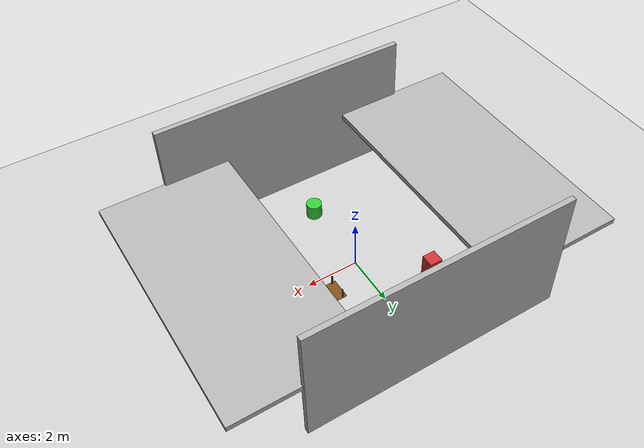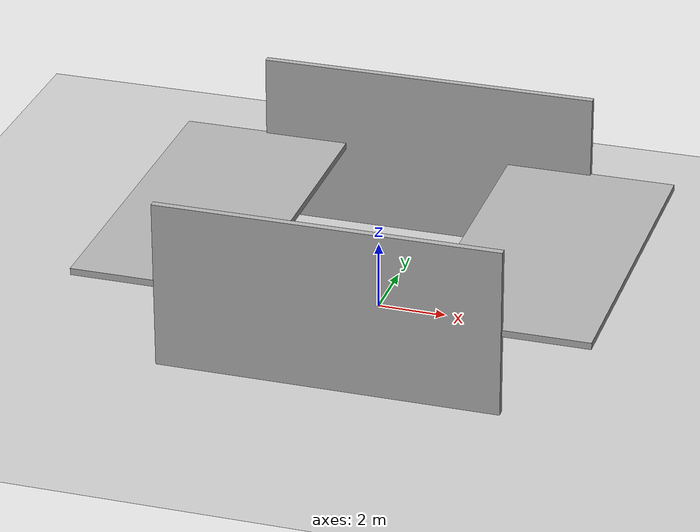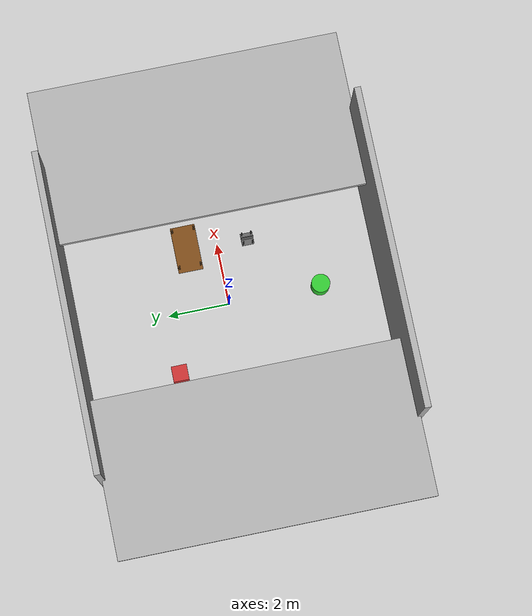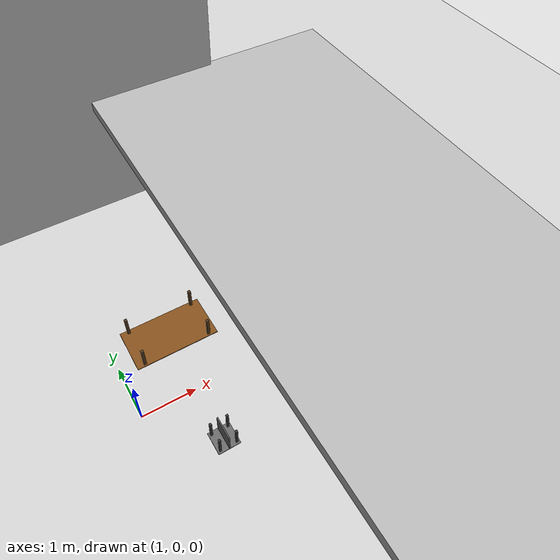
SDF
<sdf version="1.7">
 <world name="humanoid_indoor">
  <physics type="ode">
   <gravity>0 0 -9.8</gravity>
   <max_step_size>0.001</max_step_size>
   <real_time_factor>1.0</real_time_factor>
   <real_time_update_rate>1000</real_time_update_rate>
   <ode>
    <solver><type>quick</type><iters>100</iters><sor>1.3</sor></solver>
    <constraints>
     <cfm>0.0</cfm>
     <erp>0.2</erp>
     <contact_max_correcting_vel>100.0</contact_max_correcting_vel>
     <contact_surface_layer>0.001</contact_surface_layer>
    </constraints>
   </ode>
  </physics>
  <light name="sun" type="directional">
   <pose>0 0 10 0 0 0</pose>
   <diffuse>0.8 0.8 0.8 1</diffuse>
   <specular>0.2 0.2 0.2 1</specular>
   <attenuation>
    <range>1000</range>
    <constant>0.9</constant>
    <linear>0.01</linear>
    <quadratic>0.001</quadratic>
   </attenuation>
   <direction>-0.3 0.1 -0.9</direction>
  </light>
  <light name="ceiling_light_1" type="point">
   <pose>0 0 3 0 0 0</pose>
   <diffuse>0.8 0.8 0.8 1</diffuse>
   <specular>0.2 0.2 0.2 1</specular>
   <attenuation>
    <range>10</range>
    <constant>0.5</constant>
    <linear>0.05</linear>
    <quadratic>0.01</quadratic>
   </attenuation>
  </light>
  <light name="ceiling_light_2" type="point">
   <pose>3 0 3 0 0 0</pose>
   <diffuse>0.8 0.8 0.8 1</diffuse>
   <specular>0.2 0.2 0.2 1</specular>
   <attenuation>
    <range>10</range>
    <constant>0.5</constant>
    <linear>0.05</linear>
    <quadratic>0.01</quadratic>
   </attenuation>
  </light>
  <light name="ceiling_light_3" type="point">
   <pose>-3 0 3 0 0 0</pose>
   <diffuse>0.8 0.8 0.8 1</diffuse>
   <specular>0.2 0.2 0.2 1</specular>
   <attenuation>
    <range>10</range>
    <constant>0.5</constant>
    <linear>0.05</linear>
    <quadratic>0.01</quadratic>
   </attenuation>
  </light>
  <include><uri>model://ground_plane</uri></include>
  <model name="wall_front">
   <pose>0 -5 2.5 0 0 0</pose>
   <link name="link">
    <collision name="collision"><geometry><box><size>10 0.2 5</size></box></geometry></collision>
    <visual name="visual">
     <geometry><box><size>10 0.2 5</size></box></geometry>
     <material><ambient>0.7 0.7 0.7 1</ambient><diffuse>0.7 0.7 0.7 1</diffuse></material>
    </visual>
   </link>
  </model>
  <model name="wall_back">
   <pose>0 5 2.5 0 0 3.14159</pose>
   <link name="link">
    <collision name="collision"><geometry><box><size>10 0.2 5</size></box></geometry></collision>
    <visual name="visual">
     <geometry><box><size>10 0.2 5</size></box></geometry>
     <material><ambient>0.7 0.7 0.7 1</ambient><diffuse>0.7 0.7 0.7 1</diffuse></material>
    </visual>
   </link>
  </model>
  <model name="wall_left">
   <pose>-5 0 2.5 -1.5708 0 -1.5708</pose>
   <link name="link">
    <collision name="collision"><geometry><box><size>10 0.2 5</size></box></geometry></collision>
    <visual name="visual">
     <geometry><box><size>10 0.2 5</size></box></geometry>
     <material><ambient>0.7 0.7 0.7 1</ambient><diffuse>0.7 0.7 0.7 1</diffuse></material>
    </visual>
   </link>
  </model>
  <model name="wall_right">
   <pose>5 0 2.5 -1.5708 0 1.5708</pose>
   <link name="link">
    <collision name="collision"><geometry><box><size>10 0.2 5</size></box></geometry></collision>
    <visual name="visual">
     <geometry><box><size>10 0.2 5</size></box></geometry>
     <material><ambient>0.7 0.7 0.7 1</ambient><diffuse>0.7 0.7 0.7 1</diffuse></material>
    </visual>
   </link>
  </model>
  <model name="table">
   <pose>2 1 0.4 0 0 0</pose>
   <link name="table_top">
    <collision name="collision"><geometry><box><size>1.5 0.8 0.02</size></box></geometry></collision>
    <visual name="visual">
     <geometry><box><size>1.5 0.8 0.02</size></box></geometry>
     <material><ambient>0.5 0.3 0.1 1</ambient><diffuse>0.5 0.3 0.1 1</diffuse></material>
    </visual>
    <inertial><mass>10.0</mass><inertia ixx="1.0" ixy="0.0" ixz="0.0" iyy="1.0" iyz="0.0" izz="1.0"/></inertial>
   </link>
   <link name="leg_1">
    <pose>-0.6 -0.35 0.2 0 0 0</pose>
    <collision name="collision"><geometry><box><size>0.05 0.05 0.4</size></box></geometry></collision>
    <visual name="visual">
     <geometry><box><size>0.05 0.05 0.4</size></box></geometry>
     <material><ambient>0.3 0.2 0.1 1</ambient><diffuse>0.3 0.2 0.1 1</diffuse></material>
    </visual>
    <inertial><mass>1.0</mass><inertia ixx="0.1" ixy="0.0" ixz="0.0" iyy="0.1" iyz="0.0" izz="0.1"/></inertial>
   </link>
   <link name="leg_2">
    <pose>0.6 -0.35 0.2 0 0 0</pose>
    <collision name="collision"><geometry><box><size>0.05 0.05 0.4</size></box></geometry></collision>
    <visual name="visual">
     <geometry><box><size>0.05 0.05 0.4</size></box></geometry>
     <material><ambient>0.3 0.2 0.1 1</ambient><diffuse>0.3 0.2 0.1 1</diffuse></material>
    </visual>
    <inertial><mass>1.0</mass><inertia ixx="0.1" ixy="0.0" ixz="0.0" iyy="0.1" iyz="0.0" izz="0.1"/></inertial>
   </link>
   <link name="leg_3">
    <pose>-0.6 0.35 0.2 0 0 0</pose>
    <collision name="collision"><geometry><box><size>0.05 0.05 0.4</size></box></geometry></collision>
    <visual name="visual">
     <geometry><box><size>0.05 0.05 0.4</size></box></geometry>
     <material><ambient>0.3 0.2 0.1 1</ambient><diffuse>0.3 0.2 0.1 1</diffuse></material>
    </visual>
    <inertial><mass>1.0</mass><inertia ixx="0.1" ixy="0.0" ixz="0.0" iyy="0.1" iyz="0.0" izz="0.1"/></inertial>
   </link>
   <link name="leg_4">
    <pose>0.6 0.35 0.2 0 0 0</pose>
    <collision name="collision"><geometry><box><size>0.05 0.05 0.4</size></box></geometry></collision>
    <visual name="visual">
     <geometry><box><size>0.05 0.05 0.4</size></box></geometry>
     <material><ambient>0.3 0.2 0.1 1</ambient><diffuse>0.3 0.2 0.1 1</diffuse></material>
    </visual>
    <inertial><mass>1.0</mass><inertia ixx="0.1" ixy="0.0" ixz="0.0" iyy="0.1" iyz="0.0" izz="0.1"/></inertial>
   </link>
   <joint name="top_to_leg_1" type="fixed"><parent>table_top</parent><child>leg_1</child></joint>
   <joint name="top_to_leg_2" type="fixed"><parent>table_top</parent><child>leg_2</child></joint>
   <joint name="top_to_leg_3" type="fixed"><parent>table_top</parent><child>leg_3</child></joint>
   <joint name="top_to_leg_4" type="fixed"><parent>table_top</parent><child>leg_4</child></joint>
  </model>
  <model name="chair">
   <pose>2 -1 0 0 0 0</pose>
   <link name="seat">
    <collision name="collision"><geometry><box><size>0.4 0.4 0.02</size></box></geometry></collision>
    <visual name="visual">
     <geometry><box><size>0.4 0.4 0.02</size></box></geometry>
     <material><ambient>0.4 0.4 0.4 1</ambient><diffuse>0.4 0.4 0.4 1</diffuse></material>
    </visual>
    <inertial><mass>5.0</mass><inertia ixx="0.5" ixy="0.0" ixz="0.0" iyy="0.5" iyz="0.0" izz="0.5"/></inertial>
   </link>
   <link name="back">
    <pose>0 0 0.2 0 0 0</pose>
    <collision name="collision"><geometry><box><size>0.02 0.4 0.4</size></box></geometry></collision>
    <visual name="visual">
     <geometry><box><size>0.02 0.4 0.4</size></box></geometry>
     <material><ambient>0.4 0.4 0.4 1</ambient><diffuse>0.4 0.4 0.4 1</diffuse></material>
    </visual>
    <inertial><mass>3.0</mass><inertia ixx="0.3" ixy="0.0" ixz="0.0" iyy="0.3" iyz="0.0" izz="0.3"/></inertial>
   </link>
   <link name="leg_1">
    <pose>-0.15 -0.15 0.2 0 0 0</pose>
    <collision name="collision"><geometry><box><size>0.04 0.04 0.4</size></box></geometry></collision>
    <visual name="visual">
     <geometry><box><size>0.04 0.04 0.4</size></box></geometry>
     <material><ambient>0.2 0.2 0.2 1</ambient><diffuse>0.2 0.2 0.2 1</diffuse></material>
    </visual>
    <inertial><mass>1.0</mass><inertia ixx="0.1" ixy="0.0" ixz="0.0" iyy="0.1" iyz="0.0" izz="0.1"/></inertial>
   </link>
   <link name="leg_2">
    <pose>0.15 -0.15 0.2 0 0 0</pose>
    <collision name="collision"><geometry><box><size>0.04 0.04 0.4</size></box></geometry></collision>
    <visual name="visual">
     <geometry><box><size>0.04 0.04 0.4</size></box></geometry>
     <material><ambient>0.2 0.2 0.2 1</ambient><diffuse>0.2 0.2 0.2 1</diffuse></material>
    </visual>
    <inertial><mass>1.0</mass><inertia ixx="0.1" ixy="0.0" ixz="0.0" iyy="0.1" iyz="0.0" izz="0.1"/></inertial>
   </link>
   <link name="leg_3">
    <pose>-0.15 0.15 0.2 0 0 0</pose>
    <collision name="collision"><geometry><box><size>0.04 0.04 0.4</size></box></geometry></collision>
    <visual name="visual">
     <geometry><box><size>0.04 0.04 0.4</size></box></geometry>
     <material><ambient>0.2 0.2 0.2 1</ambient><diffuse>0.2 0.2 0.2 1</diffuse></material>
    </visual>
    <inertial><mass>1.0</mass><inertia ixx="0.1" ixy="0.0" ixz="0.0" iyy="0.1" iyz="0.0" izz="0.1"/></inertial>
   </link>
   <link name="leg_4">
    <pose>0.15 0.15 0.2 0 0 0</pose>
    <collision name="collision"><geometry><box><size>0.04 0.04 0.4</size></box></geometry></collision>
    <visual name="visual">
     <geometry><box><size>0.04 0.04 0.4</size></box></geometry>
     <material><ambient>0.2 0.2 0.2 1</ambient><diffuse>0.2 0.2 0.2 1</diffuse></material>
    </visual>
    <inertial><mass>1.0</mass><inertia ixx="0.1" ixy="0.0" ixz="0.0" iyy="0.1" iyz="0.0" izz="0.1"/></inertial>
   </link>
   <joint name="seat_to_back" type="fixed">
    <parent>seat</parent>
    <child>back</child>
    <pose>0 0 0.2 0 0 0</pose>
   </joint>
   <joint name="seat_to_leg_1" type="fixed"><parent>seat</parent><child>leg_1</child></joint>
   <joint name="seat_to_leg_2" type="fixed"><parent>seat</parent><child>leg_2</child></joint>
   <joint name="seat_to_leg_3" type="fixed"><parent>seat</parent><child>leg_3</child></joint>
   <joint name="seat_to_leg_4" type="fixed"><parent>seat</parent><child>leg_4</child></joint>
  </model>
  <model name="obstacle_1">
   <pose>-2 2 0.5 0 0 0</pose>
   <link name="link">
    <collision name="collision"><geometry><box><size>0.5 0.5 1</size></box></geometry></collision>
    <visual name="visual">
     <geometry><box><size>0.5 0.5 1</size></box></geometry>
     <material><ambient>0.8 0.2 0.2 1</ambient><diffuse>0.8 0.2 0.2 1</diffuse></material>
    </visual>
    <inertial><mass>2.0</mass><inertia ixx="0.2" ixy="0.0" ixz="0.0" iyy="0.2" iyz="0.0" izz="0.2"/></inertial>
   </link>
  </model>
  <model name="obstacle_2">
   <pose>0 -3 0.3 0 0 0</pose>
   <link name="link">
    <collision name="collision">
     <geometry><cylinder><radius>0.3</radius><length>0.6</length></cylinder></geometry>
    </collision>
    <visual name="visual">
     <geometry><cylinder><radius>0.3</radius><length>0.6</length></cylinder></geometry>
     <material><ambient>0.2 0.8 0.2 1</ambient><diffuse>0.2 0.8 0.2 1</diffuse></material>
    </visual>
    <inertial><mass>3.0</mass><inertia ixx="0.3" ixy="0.0" ixz="0.0" iyy="0.3" iyz="0.0" izz="0.3"/></inertial>
   </link>
  </model>
 </world>
</sdf>
